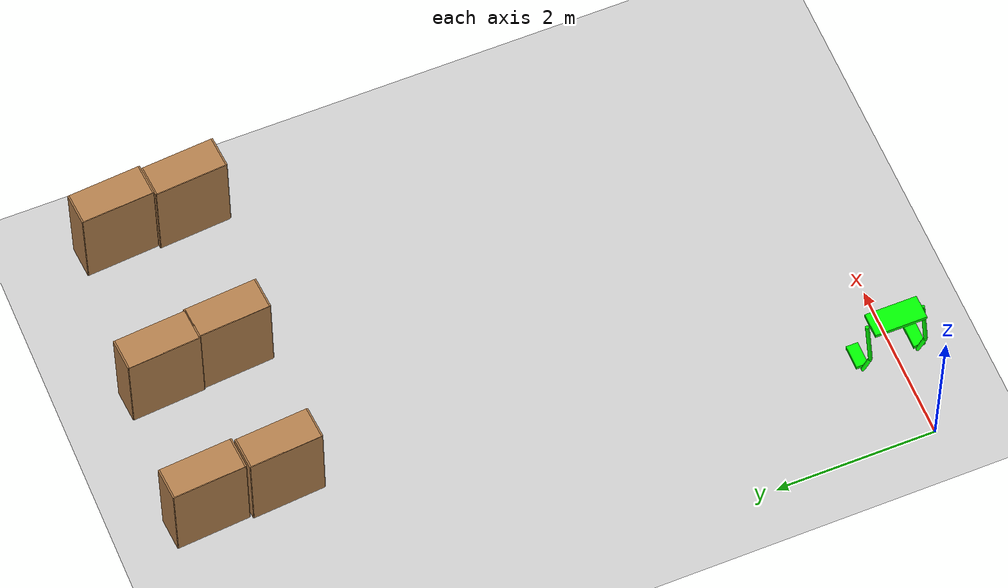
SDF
<sdf version="1.6">
 <world name="default">
  <model name="ground_plane">
   <static>1</static>
   <link name="link">
    <collision name="collision">
     <geometry><plane><normal>0 0 1</normal><size>100 100</size></plane></geometry>
     <surface>
      <contact><collide_bitmask>65535</collide_bitmask></contact>
      <friction><ode><mu>100</mu><mu2>50</mu2></ode></friction>
     </surface>
    </collision>
    <visual name="visual">
     <cast_shadows>0</cast_shadows>
     <geometry><plane><normal>0 0 1</normal><size>100 100</size></plane></geometry>
     <material>
      <script><uri>file://media/materials/scripts/gazebo.material</uri><name>Gazebo/Grey</name></script>
     </material>
    </visual>
   </link>
  </model>
  <model name="robot">
   <link name="link_0">
    <pose>0.171276 -0.377857 -0.408657 0 -0 0</pose>
    <inertial>
     <mass>1</mass>
     <inertia>
      <ixx>0.166667</ixx>
      <ixy>0</ixy>
      <ixz>0</ixz>
      <iyy>0.166667</iyy>
      <iyz>0</iyz>
      <izz>0.166667</izz>
     </inertia>
    </inertial>
    <visual name="visual">
     <geometry><box><size>0.3 0.15 0.05</size></box></geometry>
     <material>
      <lighting>1</lighting>
      <script><uri>file://media/materials/scripts/gazebo.material</uri><name>Gazebo/Grey</name></script>
      <shader type="pixel"><normal_map>__default__</normal_map></shader>
      <ambient>0.3 0.3 0.3 1</ambient>
      <diffuse>0 1 0 1</diffuse>
      <specular>0.01 0.01 0.01 1</specular>
      <emissive>0 0 0 1</emissive>
     </material>
    </visual>
    <collision name="collision">
     <geometry><box><size>0.3 0.15 0.05</size></box></geometry>
     <surface>
      <friction>
       <ode><mu>1</mu><mu2>1</mu2><fdir1>0 0 0</fdir1><slip1>0</slip1><slip2>0</slip2></ode>
       <torsional>
        <coefficient>1</coefficient>
        <patch_radius>0</patch_radius>
        <surface_radius>0</surface_radius>
        <use_patch_radius>1</use_patch_radius>
        <ode><slip>0</slip></ode>
       </torsional>
      </friction>
      <bounce><restitution_coefficient>0</restitution_coefficient><threshold>1e+06</threshold></bounce>
      <contact>
       <collide_without_contact>0</collide_without_contact>
       <collide_without_contact_bitmask>1</collide_without_contact_bitmask>
       <collide_bitmask>1</collide_bitmask>
       <ode>
        <soft_cfm>0</soft_cfm>
        <soft_erp>0.2</soft_erp>
        <kp>1e+13</kp>
        <kd>1</kd>
        <max_vel>0.01</max_vel>
        <min_depth>0</min_depth>
       </ode>
       <bullet>
        <split_impulse>1</split_impulse>
        <split_impulse_penetration_threshold>-0.01</split_impulse_penetration_threshold>
        <soft_cfm>0</soft_cfm>
        <soft_erp>0.2</soft_erp>
        <kp>1e+13</kp>
        <kd>1</kd>
       </bullet>
      </contact>
     </surface>
    </collision>
   </link>
   <link name="link_0_clone">
    <pose>0.167162 0.354643 -0.398768 0 -0 0</pose>
    <inertial>
     <mass>1</mass>
     <inertia>
      <ixx>0.166667</ixx>
      <ixy>0</ixy>
      <ixz>0</ixz>
      <iyy>0.166667</iyy>
      <iyz>0</iyz>
      <izz>0.166667</izz>
     </inertia>
    </inertial>
    <visual name="visual">
     <geometry><box><size>0.3 0.15 0.05</size></box></geometry>
     <material>
      <lighting>1</lighting>
      <script><uri>file://media/materials/scripts/gazebo.material</uri><name>Gazebo/Grey</name></script>
      <shader type="pixel"><normal_map>__default__</normal_map></shader>
      <ambient>0.3 0.3 0.3 1</ambient>
      <diffuse>0 1 0 1</diffuse>
      <specular>0.01 0.01 0.01 1</specular>
      <emissive>0 0 0 1</emissive>
     </material>
    </visual>
    <collision name="collision">
     <geometry><box><size>0.3 0.15 0.05</size></box></geometry>
     <surface>
      <friction>
       <ode><mu>1</mu><mu2>1</mu2><fdir1>0 0 0</fdir1><slip1>0</slip1><slip2>0</slip2></ode>
       <torsional>
        <coefficient>1</coefficient>
        <patch_radius>0</patch_radius>
        <surface_radius>0</surface_radius>
        <use_patch_radius>1</use_patch_radius>
        <ode><slip>0</slip></ode>
       </torsional>
      </friction>
      <bounce><restitution_coefficient>0</restitution_coefficient><threshold>1e+06</threshold></bounce>
      <contact>
       <collide_without_contact>0</collide_without_contact>
       <collide_without_contact_bitmask>1</collide_without_contact_bitmask>
       <collide_bitmask>1</collide_bitmask>
       <ode>
        <soft_cfm>0</soft_cfm>
        <soft_erp>0.2</soft_erp>
        <kp>1e+13</kp>
        <kd>1</kd>
        <max_vel>0.01</max_vel>
        <min_depth>0</min_depth>
       </ode>
       <bullet>
        <split_impulse>1</split_impulse>
        <split_impulse_penetration_threshold>-0.01</split_impulse_penetration_threshold>
        <soft_cfm>0</soft_cfm>
        <soft_erp>0.2</soft_erp>
        <kp>1e+13</kp>
        <kd>1</kd>
       </bullet>
      </contact>
     </surface>
    </collision>
   </link>
   <link name="link_0_clone_0">
    <pose>-0.024251 0.004643 0.576232 0 -0 0</pose>
    <inertial>
     <mass>1</mass>
     <inertia>
      <ixx>0.166667</ixx>
      <ixy>0</ixy>
      <ixz>0</ixz>
      <iyy>0.166667</iyy>
      <iyz>0</iyz>
      <izz>0.166667</izz>
     </inertia>
    </inertial>
    <visual name="visual">
     <geometry><box><size>0.3 0.65 0.05</size></box></geometry>
     <material>
      <lighting>1</lighting>
      <script><uri>file://media/materials/scripts/gazebo.material</uri><name>Gazebo/Grey</name></script>
      <shader type="pixel"><normal_map>__default__</normal_map></shader>
      <ambient>0.3 0.3 0.3 1</ambient>
      <diffuse>0 1 0 1</diffuse>
      <specular>0.01 0.01 0.01 1</specular>
      <emissive>0 0 0 1</emissive>
     </material>
    </visual>
    <collision name="collision">
     <geometry><box><size>0.3 0.65 0.05</size></box></geometry>
     <surface>
      <friction>
       <ode><mu>1</mu><mu2>1</mu2><fdir1>0 0 0</fdir1><slip1>0</slip1><slip2>0</slip2></ode>
       <torsional>
        <coefficient>1</coefficient>
        <patch_radius>0</patch_radius>
        <surface_radius>0</surface_radius>
        <use_patch_radius>1</use_patch_radius>
        <ode><slip>0</slip></ode>
       </torsional>
      </friction>
      <bounce><restitution_coefficient>0</restitution_coefficient><threshold>1e+06</threshold></bounce>
      <contact>
       <collide_without_contact>0</collide_without_contact>
       <collide_without_contact_bitmask>1</collide_without_contact_bitmask>
       <collide_bitmask>1</collide_bitmask>
       <ode>
        <soft_cfm>0</soft_cfm>
        <soft_erp>0.2</soft_erp>
        <kp>1e+13</kp>
        <kd>1</kd>
        <max_vel>0.01</max_vel>
        <min_depth>0</min_depth>
       </ode>
       <bullet>
        <split_impulse>1</split_impulse>
        <split_impulse_penetration_threshold>-0.01</split_impulse_penetration_threshold>
        <soft_cfm>0</soft_cfm>
        <soft_erp>0.2</soft_erp>
        <kp>1e+13</kp>
        <kd>1</kd>
       </bullet>
      </contact>
     </surface>
    </collision>
   </link>
   <link name="link_1">
    <pose>-0.080601 0.354643 0.301249 0 0.3 0</pose>
    <inertial>
     <mass>1</mass>
     <inertia><ixx>0.145833</ixx><ixy>0</ixy><ixz>0</ixz><iyy>0.145833</iyy><iyz>0</iyz><izz>0.125</izz></inertia>
    </inertial>
    <visual name="visual">
     <geometry><cylinder><radius>0.025</radius><length>0.5</length></cylinder></geometry>
     <material>
      <lighting>1</lighting>
      <script><uri>file://media/materials/scripts/gazebo.material</uri><name>Gazebo/Grey</name></script>
      <shader type="pixel"><normal_map>__default__</normal_map></shader>
      <ambient>0.3 0.3 0.3 1</ambient>
      <diffuse>0 1 0 1</diffuse>
      <specular>0.01 0.01 0.01 1</specular>
      <emissive>0 0 0 1</emissive>
     </material>
    </visual>
    <collision name="collision">
     <geometry><cylinder><radius>0.025</radius><length>0.5</length></cylinder></geometry>
     <surface>
      <friction>
       <ode><mu>1</mu><mu2>1</mu2><fdir1>0 0 0</fdir1><slip1>0</slip1><slip2>0</slip2></ode>
       <torsional>
        <coefficient>1</coefficient>
        <patch_radius>0</patch_radius>
        <surface_radius>0</surface_radius>
        <use_patch_radius>1</use_patch_radius>
        <ode><slip>0</slip></ode>
       </torsional>
      </friction>
      <bounce><restitution_coefficient>0</restitution_coefficient><threshold>1e+06</threshold></bounce>
      <contact>
       <collide_without_contact>0</collide_without_contact>
       <collide_without_contact_bitmask>1</collide_without_contact_bitmask>
       <collide_bitmask>1</collide_bitmask>
       <ode>
        <soft_cfm>0</soft_cfm>
        <soft_erp>0.2</soft_erp>
        <kp>1e+13</kp>
        <kd>1</kd>
        <max_vel>0.01</max_vel>
        <min_depth>0</min_depth>
       </ode>
       <bullet>
        <split_impulse>1</split_impulse>
        <split_impulse_penetration_threshold>-0.01</split_impulse_penetration_threshold>
        <soft_cfm>0</soft_cfm>
        <soft_erp>0.2</soft_erp>
        <kp>1e+13</kp>
        <kd>1</kd>
       </bullet>
      </contact>
     </surface>
    </collision>
   </link>
   <link name="link_1_clone">
    <pose>-0.076488 -0.345357 0.30501 0 0.3 0</pose>
    <inertial>
     <mass>1</mass>
     <inertia><ixx>0.145833</ixx><ixy>0</ixy><ixz>0</ixz><iyy>0.145833</iyy><iyz>0</iyz><izz>0.125</izz></inertia>
    </inertial>
    <visual name="visual">
     <geometry><cylinder><radius>0.025</radius><length>0.5</length></cylinder></geometry>
     <material>
      <lighting>1</lighting>
      <script><uri>file://media/materials/scripts/gazebo.material</uri><name>Gazebo/Grey</name></script>
      <shader type="pixel"><normal_map>__default__</normal_map></shader>
      <ambient>0.3 0.3 0.3 1</ambient>
      <diffuse>0 1 0 1</diffuse>
      <specular>0.01 0.01 0.01 1</specular>
      <emissive>0 0 0 1</emissive>
     </material>
    </visual>
    <collision name="collision">
     <geometry><cylinder><radius>0.025</radius><length>0.5</length></cylinder></geometry>
     <surface>
      <friction>
       <ode><mu>1</mu><mu2>1</mu2><fdir1>0 0 0</fdir1><slip1>0</slip1><slip2>0</slip2></ode>
       <torsional>
        <coefficient>1</coefficient>
        <patch_radius>0</patch_radius>
        <surface_radius>0</surface_radius>
        <use_patch_radius>1</use_patch_radius>
        <ode><slip>0</slip></ode>
       </torsional>
      </friction>
      <bounce><restitution_coefficient>0</restitution_coefficient><threshold>1e+06</threshold></bounce>
      <contact>
       <collide_without_contact>0</collide_without_contact>
       <collide_without_contact_bitmask>1</collide_without_contact_bitmask>
       <collide_bitmask>1</collide_bitmask>
       <ode>
        <soft_cfm>0</soft_cfm>
        <soft_erp>0.2</soft_erp>
        <kp>1e+13</kp>
        <kd>1</kd>
        <max_vel>0.01</max_vel>
        <min_depth>0</min_depth>
       </ode>
       <bullet>
        <split_impulse>1</split_impulse>
        <split_impulse_penetration_threshold>-0.01</split_impulse_penetration_threshold>
        <soft_cfm>0</soft_cfm>
        <soft_erp>0.2</soft_erp>
        <kp>1e+13</kp>
        <kd>1</kd>
       </bullet>
      </contact>
     </surface>
    </collision>
   </link>
   <link name="link_1_clone_0">
    <pose>-0.080601 0.354643 -0.187631 0 -0.3 0</pose>
    <inertial>
     <mass>1</mass>
     <inertia><ixx>0.145833</ixx><ixy>0</ixy><ixz>0</ixz><iyy>0.145833</iyy><iyz>0</iyz><izz>0.125</izz></inertia>
    </inertial>
    <visual name="visual">
     <geometry><cylinder><radius>0.025</radius><length>0.5</length></cylinder></geometry>
     <material>
      <lighting>1</lighting>
      <script><uri>file://media/materials/scripts/gazebo.material</uri><name>Gazebo/Grey</name></script>
      <shader type="pixel"><normal_map>__default__</normal_map></shader>
      <ambient>0.3 0.3 0.3 1</ambient>
      <diffuse>0 1 0 1</diffuse>
      <specular>0.01 0.01 0.01 1</specular>
      <emissive>0 0 0 1</emissive>
     </material>
    </visual>
    <collision name="collision">
     <geometry><cylinder><radius>0.025</radius><length>0.5</length></cylinder></geometry>
     <surface>
      <friction>
       <ode><mu>1</mu><mu2>1</mu2><fdir1>0 0 0</fdir1><slip1>0</slip1><slip2>0</slip2></ode>
       <torsional>
        <coefficient>1</coefficient>
        <patch_radius>0</patch_radius>
        <surface_radius>0</surface_radius>
        <use_patch_radius>1</use_patch_radius>
        <ode><slip>0</slip></ode>
       </torsional>
      </friction>
      <bounce><restitution_coefficient>0</restitution_coefficient><threshold>1e+06</threshold></bounce>
      <contact>
       <collide_without_contact>0</collide_without_contact>
       <collide_without_contact_bitmask>1</collide_without_contact_bitmask>
       <collide_bitmask>1</collide_bitmask>
       <ode>
        <soft_cfm>0</soft_cfm>
        <soft_erp>0.2</soft_erp>
        <kp>1e+13</kp>
        <kd>1</kd>
        <max_vel>0.01</max_vel>
        <min_depth>0</min_depth>
       </ode>
       <bullet>
        <split_impulse>1</split_impulse>
        <split_impulse_penetration_threshold>-0.01</split_impulse_penetration_threshold>
        <soft_cfm>0</soft_cfm>
        <soft_erp>0.2</soft_erp>
        <kp>1e+13</kp>
        <kd>1</kd>
       </bullet>
      </contact>
     </surface>
    </collision>
   </link>
   <link name="link_1_clone_0_clone">
    <pose>-0.076488 -0.345357 -0.187435 0 -0.3 0</pose>
    <inertial>
     <mass>1</mass>
     <inertia><ixx>0.145833</ixx><ixy>0</ixy><ixz>0</ixz><iyy>0.145833</iyy><iyz>0</iyz><izz>0.125</izz></inertia>
    </inertial>
    <visual name="visual">
     <geometry><cylinder><radius>0.025</radius><length>0.5</length></cylinder></geometry>
     <material>
      <lighting>1</lighting>
      <script><uri>file://media/materials/scripts/gazebo.material</uri><name>Gazebo/Grey</name></script>
      <shader type="pixel"><normal_map>__default__</normal_map></shader>
      <ambient>0.3 0.3 0.3 1</ambient>
      <diffuse>0 1 0 1</diffuse>
      <specular>0.01 0.01 0.01 1</specular>
      <emissive>0 0 0 1</emissive>
     </material>
    </visual>
    <collision name="collision">
     <geometry><cylinder><radius>0.025</radius><length>0.5</length></cylinder></geometry>
     <surface>
      <friction>
       <ode><mu>1</mu><mu2>1</mu2><fdir1>0 0 0</fdir1><slip1>0</slip1><slip2>0</slip2></ode>
       <torsional>
        <coefficient>1</coefficient>
        <patch_radius>0</patch_radius>
        <surface_radius>0</surface_radius>
        <use_patch_radius>1</use_patch_radius>
        <ode><slip>0</slip></ode>
       </torsional>
      </friction>
      <bounce><restitution_coefficient>0</restitution_coefficient><threshold>1e+06</threshold></bounce>
      <contact>
       <collide_without_contact>0</collide_without_contact>
       <collide_without_contact_bitmask>1</collide_without_contact_bitmask>
       <collide_bitmask>1</collide_bitmask>
       <ode>
        <soft_cfm>0</soft_cfm>
        <soft_erp>0.2</soft_erp>
        <kp>1e+13</kp>
        <kd>1</kd>
        <max_vel>0.01</max_vel>
        <min_depth>0</min_depth>
       </ode>
       <bullet>
        <split_impulse>1</split_impulse>
        <split_impulse_penetration_threshold>-0.01</split_impulse_penetration_threshold>
        <soft_cfm>0</soft_cfm>
        <soft_erp>0.2</soft_erp>
        <kp>1e+13</kp>
        <kd>1</kd>
       </bullet>
      </contact>
     </surface>
    </collision>
   </link>
   <joint name="link_0_clone_0_JOINT_0" type="revolute">
    <parent>link_0_clone_0</parent>
    <child>link_1</child>
    <axis>
     <xyz>0 1 0</xyz>
     <use_parent_model_frame>0</use_parent_model_frame>
     <limit>
      <lower>-1.79769e+308</lower>
      <upper>1.79769e+308</upper>
      <effort>-1</effort>
      <velocity>-1</velocity>
     </limit>
     <dynamics>
      <spring_reference>0</spring_reference>
      <spring_stiffness>0</spring_stiffness>
      <damping>0</damping>
      <friction>0</friction>
     </dynamics>
    </axis>
    <physics>
     <ode><limit><cfm>0</cfm><erp>0.2</erp></limit><suspension><cfm>0</cfm><erp>0.2</erp></suspension></ode>
    </physics>
   </joint>
   <joint name="link_0_clone_0_JOINT_1" type="revolute">
    <parent>link_0_clone_0</parent>
    <child>link_1_clone</child>
    <axis>
     <xyz>0 0 1</xyz>
     <use_parent_model_frame>0</use_parent_model_frame>
     <limit>
      <lower>-1.79769e+308</lower>
      <upper>1.79769e+308</upper>
      <effort>-1</effort>
      <velocity>-1</velocity>
     </limit>
     <dynamics>
      <spring_reference>0</spring_reference>
      <spring_stiffness>0</spring_stiffness>
      <damping>0</damping>
     </dynamics>
    </axis>
    <physics>
     <ode><limit><cfm>0</cfm><erp>0.2</erp></limit><suspension><cfm>0</cfm><erp>0.2</erp></suspension></ode>
    </physics>
   </joint>
   <joint name="link_1_JOINT_3" type="revolute">
    <parent>link_1</parent>
    <child>link_1_clone_0</child>
    <axis>
     <xyz>0 -1 0</xyz>
     <use_parent_model_frame>0</use_parent_model_frame>
     <limit>
      <lower>-1.79769e+308</lower>
      <upper>1.79769e+308</upper>
      <effort>-1</effort>
      <velocity>-1</velocity>
     </limit>
     <dynamics>
      <spring_reference>0</spring_reference>
      <spring_stiffness>0</spring_stiffness>
      <damping>0</damping>
     </dynamics>
    </axis>
    <physics>
     <ode><limit><cfm>0</cfm><erp>0.2</erp></limit><suspension><cfm>0</cfm><erp>0.2</erp></suspension></ode>
    </physics>
   </joint>
   <joint name="link_1_clone_0_JOINT_6" type="revolute">
    <parent>link_1_clone_0</parent>
    <child>link_0_clone</child>
    <axis>
     <xyz>0 1 0</xyz>
     <use_parent_model_frame>0</use_parent_model_frame>
     <limit>
      <lower>-1.79769e+308</lower>
      <upper>1.79769e+308</upper>
      <effort>-1</effort>
      <velocity>-1</velocity>
     </limit>
     <dynamics>
      <spring_reference>0</spring_reference>
      <spring_stiffness>0</spring_stiffness>
      <damping>0</damping>
     </dynamics>
    </axis>
    <physics>
     <ode><limit><cfm>0</cfm><erp>0.2</erp></limit><suspension><cfm>0</cfm><erp>0.2</erp></suspension></ode>
    </physics>
   </joint>
   <joint name="link_1_clone_0_clone_JOINT_5" type="revolute">
    <parent>link_1_clone_0_clone</parent>
    <child>link_0</child>
    <axis>
     <xyz>0 1 0</xyz>
     <use_parent_model_frame>0</use_parent_model_frame>
     <limit>
      <lower>-1.79769e+308</lower>
      <upper>1.79769e+308</upper>
      <effort>-1</effort>
      <velocity>-1</velocity>
     </limit>
     <dynamics>
      <spring_reference>0</spring_reference>
      <spring_stiffness>0</spring_stiffness>
      <damping>0</damping>
     </dynamics>
    </axis>
    <physics>
     <ode><limit><cfm>0</cfm><erp>0.2</erp></limit><suspension><cfm>0</cfm><erp>0.2</erp></suspension></ode>
    </physics>
   </joint>
   <joint name="link_1_clone_JOINT_4" type="revolute">
    <parent>link_1_clone</parent>
    <child>link_1_clone_0_clone</child>
    <axis>
     <xyz>0 1 0</xyz>
     <use_parent_model_frame>0</use_parent_model_frame>
     <limit>
      <lower>-1.79769e+308</lower>
      <upper>1.79769e+308</upper>
      <effort>-1</effort>
      <velocity>-1</velocity>
     </limit>
     <dynamics>
      <spring_reference>0</spring_reference>
      <spring_stiffness>0</spring_stiffness>
      <damping>0</damping>
     </dynamics>
    </axis>
    <physics>
     <ode><limit><cfm>0</cfm><erp>0.2</erp></limit><suspension><cfm>0</cfm><erp>0.2</erp></suspension></ode>
    </physics>
   </joint>
   <static>1</static>
   <allow_auto_disable>0</allow_auto_disable>
   <pose>1.08701 0.074875 0.423768 0 -0 0</pose>
  </model>
  <model name="bookshelf_0">
   <static>1</static>
   <link name="link">
    <inertial><mass>1</mass></inertial>
    <collision name="back">
     <pose>0 0.005 0.6 0 -0 0</pose>
     <geometry><box><size>0.9 0.01 1.2</size></box></geometry>
    </collision>
    <visual name="visual1">
     <pose>0 0.005 0.6 0 -0 0</pose>
     <geometry><box><size>0.9 0.01 1.2</size></box></geometry>
     <material>
      <script><uri>file://media/materials/scripts/gazebo.material</uri><name>Gazebo/Wood</name></script>
     </material>
    </visual>
    <collision name="left_side">
     <pose>0.45 -0.195 0.6 0 -0 0</pose>
     <geometry><box><size>0.02 0.4 1.2</size></box></geometry>
    </collision>
    <visual name="visual2">
     <pose>0.45 -0.195 0.6 0 -0 0</pose>
     <geometry><box><size>0.02 0.4 1.2</size></box></geometry>
     <material>
      <script><uri>file://media/materials/scripts/gazebo.material</uri><name>Gazebo/Wood</name></script>
     </material>
    </visual>
    <collision name="right_side">
     <pose>-0.45 -0.195 0.6 0 -0 0</pose>
     <geometry><box><size>0.02 0.4 1.2</size></box></geometry>
    </collision>
    <visual name="visual3">
     <pose>-0.45 -0.195 0.6 0 -0 0</pose>
     <geometry><box><size>0.02 0.4 1.2</size></box></geometry>
     <material>
      <script><uri>file://media/materials/scripts/gazebo.material</uri><name>Gazebo/Wood</name></script>
     </material>
    </visual>
    <collision name="bottom">
     <pose>0 -0.195 0.03 0 -0 0</pose>
     <geometry><box><size>0.88 0.4 0.06</size></box></geometry>
    </collision>
    <visual name="visual4">
     <pose>0 -0.195 0.03 0 -0 0</pose>
     <geometry><box><size>0.88 0.4 0.06</size></box></geometry>
     <material>
      <script><uri>file://media/materials/scripts/gazebo.material</uri><name>Gazebo/Wood</name></script>
     </material>
    </visual>
    <collision name="top">
     <pose>0 -0.195 1.19 0 -0 0</pose>
     <geometry><box><size>0.88 0.4 0.02</size></box></geometry>
    </collision>
    <visual name="visual5">
     <pose>0 -0.195 1.19 0 -0 0</pose>
     <geometry><box><size>0.88 0.4 0.02</size></box></geometry>
     <material>
      <script><uri>file://media/materials/scripts/gazebo.material</uri><name>Gazebo/Wood</name></script>
     </material>
    </visual>
    <collision name="low_shelf">
     <pose>0 -0.195 0.43 0 -0 0</pose>
     <geometry><box><size>0.88 0.4 0.02</size></box></geometry>
    </collision>
    <visual name="visual6">
     <pose>0 -0.195 0.43 0 -0 0</pose>
     <geometry><box><size>0.88 0.4 0.02</size></box></geometry>
     <material>
      <script><uri>file://media/materials/scripts/gazebo.material</uri><name>Gazebo/Wood</name></script>
     </material>
    </visual>
    <collision name="high_shelf">
     <pose>0 -0.195 0.8 0 -0 0</pose>
     <geometry><box><size>0.88 0.4 0.02</size></box></geometry>
    </collision>
    <visual name="visual7">
     <pose>0 -0.195 0.8 0 -0 0</pose>
     <geometry><box><size>0.88 0.4 0.02</size></box></geometry>
     <material>
      <script><uri>file://media/materials/scripts/gazebo.material</uri><name>Gazebo/Wood</name></script>
     </material>
    </visual>
   </link>
   <pose>3.80571 7.14474 0 0 -0 1.64426</pose>
  </model>
  <model name="bookshelf_0_clone">
   <static>1</static>
   <link name="link">
    <inertial><mass>1</mass></inertial>
    <collision name="back">
     <pose>0 0.005 0.6 0 -0 0</pose>
     <geometry><box><size>0.9 0.01 1.2</size></box></geometry>
    </collision>
    <visual name="visual1">
     <pose>0 0.005 0.6 0 -0 0</pose>
     <geometry><box><size>0.9 0.01 1.2</size></box></geometry>
     <material>
      <script><uri>file://media/materials/scripts/gazebo.material</uri><name>Gazebo/Wood</name></script>
     </material>
    </visual>
    <collision name="left_side">
     <pose>0.45 -0.195 0.6 0 -0 0</pose>
     <geometry><box><size>0.02 0.4 1.2</size></box></geometry>
    </collision>
    <visual name="visual2">
     <pose>0.45 -0.195 0.6 0 -0 0</pose>
     <geometry><box><size>0.02 0.4 1.2</size></box></geometry>
     <material>
      <script><uri>file://media/materials/scripts/gazebo.material</uri><name>Gazebo/Wood</name></script>
     </material>
    </visual>
    <collision name="right_side">
     <pose>-0.45 -0.195 0.6 0 -0 0</pose>
     <geometry><box><size>0.02 0.4 1.2</size></box></geometry>
    </collision>
    <visual name="visual3">
     <pose>-0.45 -0.195 0.6 0 -0 0</pose>
     <geometry><box><size>0.02 0.4 1.2</size></box></geometry>
     <material>
      <script><uri>file://media/materials/scripts/gazebo.material</uri><name>Gazebo/Wood</name></script>
     </material>
    </visual>
    <collision name="bottom">
     <pose>0 -0.195 0.03 0 -0 0</pose>
     <geometry><box><size>0.88 0.4 0.06</size></box></geometry>
    </collision>
    <visual name="visual4">
     <pose>0 -0.195 0.03 0 -0 0</pose>
     <geometry><box><size>0.88 0.4 0.06</size></box></geometry>
     <material>
      <script><uri>file://media/materials/scripts/gazebo.material</uri><name>Gazebo/Wood</name></script>
     </material>
    </visual>
    <collision name="top">
     <pose>0 -0.195 1.19 0 -0 0</pose>
     <geometry><box><size>0.88 0.4 0.02</size></box></geometry>
    </collision>
    <visual name="visual5">
     <pose>0 -0.195 1.19 0 -0 0</pose>
     <geometry><box><size>0.88 0.4 0.02</size></box></geometry>
     <material>
      <script><uri>file://media/materials/scripts/gazebo.material</uri><name>Gazebo/Wood</name></script>
     </material>
    </visual>
    <collision name="low_shelf">
     <pose>0 -0.195 0.43 0 -0 0</pose>
     <geometry><box><size>0.88 0.4 0.02</size></box></geometry>
    </collision>
    <visual name="visual6">
     <pose>0 -0.195 0.43 0 -0 0</pose>
     <geometry><box><size>0.88 0.4 0.02</size></box></geometry>
     <material>
      <script><uri>file://media/materials/scripts/gazebo.material</uri><name>Gazebo/Wood</name></script>
     </material>
    </visual>
    <collision name="high_shelf">
     <pose>0 -0.195 0.8 0 -0 0</pose>
     <geometry><box><size>0.88 0.4 0.02</size></box></geometry>
    </collision>
    <visual name="visual7">
     <pose>0 -0.195 0.8 0 -0 0</pose>
     <geometry><box><size>0.88 0.4 0.02</size></box></geometry>
     <material>
      <script><uri>file://media/materials/scripts/gazebo.material</uri><name>Gazebo/Wood</name></script>
     </material>
    </visual>
   </link>
   <pose>1.99549 7.22124 0 0 -0 1.64426</pose>
  </model>
  <model name="bookshelf_0_clone_0">
   <static>1</static>
   <link name="link">
    <inertial><mass>1</mass></inertial>
    <collision name="back">
     <pose>0 0.005 0.6 0 -0 0</pose>
     <geometry><box><size>0.9 0.01 1.2</size></box></geometry>
    </collision>
    <visual name="visual1">
     <pose>0 0.005 0.6 0 -0 0</pose>
     <geometry><box><size>0.9 0.01 1.2</size></box></geometry>
     <material>
      <script><uri>file://media/materials/scripts/gazebo.material</uri><name>Gazebo/Wood</name></script>
     </material>
    </visual>
    <collision name="left_side">
     <pose>0.45 -0.195 0.6 0 -0 0</pose>
     <geometry><box><size>0.02 0.4 1.2</size></box></geometry>
    </collision>
    <visual name="visual2">
     <pose>0.45 -0.195 0.6 0 -0 0</pose>
     <geometry><box><size>0.02 0.4 1.2</size></box></geometry>
     <material>
      <script><uri>file://media/materials/scripts/gazebo.material</uri><name>Gazebo/Wood</name></script>
     </material>
    </visual>
    <collision name="right_side">
     <pose>-0.45 -0.195 0.6 0 -0 0</pose>
     <geometry><box><size>0.02 0.4 1.2</size></box></geometry>
    </collision>
    <visual name="visual3">
     <pose>-0.45 -0.195 0.6 0 -0 0</pose>
     <geometry><box><size>0.02 0.4 1.2</size></box></geometry>
     <material>
      <script><uri>file://media/materials/scripts/gazebo.material</uri><name>Gazebo/Wood</name></script>
     </material>
    </visual>
    <collision name="bottom">
     <pose>0 -0.195 0.03 0 -0 0</pose>
     <geometry><box><size>0.88 0.4 0.06</size></box></geometry>
    </collision>
    <visual name="visual4">
     <pose>0 -0.195 0.03 0 -0 0</pose>
     <geometry><box><size>0.88 0.4 0.06</size></box></geometry>
     <material>
      <script><uri>file://media/materials/scripts/gazebo.material</uri><name>Gazebo/Wood</name></script>
     </material>
    </visual>
    <collision name="top">
     <pose>0 -0.195 1.19 0 -0 0</pose>
     <geometry><box><size>0.88 0.4 0.02</size></box></geometry>
    </collision>
    <visual name="visual5">
     <pose>0 -0.195 1.19 0 -0 0</pose>
     <geometry><box><size>0.88 0.4 0.02</size></box></geometry>
     <material>
      <script><uri>file://media/materials/scripts/gazebo.material</uri><name>Gazebo/Wood</name></script>
     </material>
    </visual>
    <collision name="low_shelf">
     <pose>0 -0.195 0.43 0 -0 0</pose>
     <geometry><box><size>0.88 0.4 0.02</size></box></geometry>
    </collision>
    <visual name="visual6">
     <pose>0 -0.195 0.43 0 -0 0</pose>
     <geometry><box><size>0.88 0.4 0.02</size></box></geometry>
     <material>
      <script><uri>file://media/materials/scripts/gazebo.material</uri><name>Gazebo/Wood</name></script>
     </material>
    </visual>
    <collision name="high_shelf">
     <pose>0 -0.195 0.8 0 -0 0</pose>
     <geometry><box><size>0.88 0.4 0.02</size></box></geometry>
    </collision>
    <visual name="visual7">
     <pose>0 -0.195 0.8 0 -0 0</pose>
     <geometry><box><size>0.88 0.4 0.02</size></box></geometry>
     <material>
      <script><uri>file://media/materials/scripts/gazebo.material</uri><name>Gazebo/Wood</name></script>
     </material>
    </visual>
   </link>
   <pose>1.959 8.16188 0 0 -0 1.64426</pose>
  </model>
  <model name="bookshelf_0_clone_1">
   <static>1</static>
   <link name="link">
    <inertial><mass>1</mass></inertial>
    <collision name="back">
     <pose>0 0.005 0.6 0 -0 0</pose>
     <geometry><box><size>0.9 0.01 1.2</size></box></geometry>
    </collision>
    <visual name="visual1">
     <pose>0 0.005 0.6 0 -0 0</pose>
     <geometry><box><size>0.9 0.01 1.2</size></box></geometry>
     <material>
      <script><uri>file://media/materials/scripts/gazebo.material</uri><name>Gazebo/Wood</name></script>
     </material>
    </visual>
    <collision name="left_side">
     <pose>0.45 -0.195 0.6 0 -0 0</pose>
     <geometry><box><size>0.02 0.4 1.2</size></box></geometry>
    </collision>
    <visual name="visual2">
     <pose>0.45 -0.195 0.6 0 -0 0</pose>
     <geometry><box><size>0.02 0.4 1.2</size></box></geometry>
     <material>
      <script><uri>file://media/materials/scripts/gazebo.material</uri><name>Gazebo/Wood</name></script>
     </material>
    </visual>
    <collision name="right_side">
     <pose>-0.45 -0.195 0.6 0 -0 0</pose>
     <geometry><box><size>0.02 0.4 1.2</size></box></geometry>
    </collision>
    <visual name="visual3">
     <pose>-0.45 -0.195 0.6 0 -0 0</pose>
     <geometry><box><size>0.02 0.4 1.2</size></box></geometry>
     <material>
      <script><uri>file://media/materials/scripts/gazebo.material</uri><name>Gazebo/Wood</name></script>
     </material>
    </visual>
    <collision name="bottom">
     <pose>0 -0.195 0.03 0 -0 0</pose>
     <geometry><box><size>0.88 0.4 0.06</size></box></geometry>
    </collision>
    <visual name="visual4">
     <pose>0 -0.195 0.03 0 -0 0</pose>
     <geometry><box><size>0.88 0.4 0.06</size></box></geometry>
     <material>
      <script><uri>file://media/materials/scripts/gazebo.material</uri><name>Gazebo/Wood</name></script>
     </material>
    </visual>
    <collision name="top">
     <pose>0 -0.195 1.19 0 -0 0</pose>
     <geometry><box><size>0.88 0.4 0.02</size></box></geometry>
    </collision>
    <visual name="visual5">
     <pose>0 -0.195 1.19 0 -0 0</pose>
     <geometry><box><size>0.88 0.4 0.02</size></box></geometry>
     <material>
      <script><uri>file://media/materials/scripts/gazebo.material</uri><name>Gazebo/Wood</name></script>
     </material>
    </visual>
    <collision name="low_shelf">
     <pose>0 -0.195 0.43 0 -0 0</pose>
     <geometry><box><size>0.88 0.4 0.02</size></box></geometry>
    </collision>
    <visual name="visual6">
     <pose>0 -0.195 0.43 0 -0 0</pose>
     <geometry><box><size>0.88 0.4 0.02</size></box></geometry>
     <material>
      <script><uri>file://media/materials/scripts/gazebo.material</uri><name>Gazebo/Wood</name></script>
     </material>
    </visual>
    <collision name="high_shelf">
     <pose>0 -0.195 0.8 0 -0 0</pose>
     <geometry><box><size>0.88 0.4 0.02</size></box></geometry>
    </collision>
    <visual name="visual7">
     <pose>0 -0.195 0.8 0 -0 0</pose>
     <geometry><box><size>0.88 0.4 0.02</size></box></geometry>
     <material>
      <script><uri>file://media/materials/scripts/gazebo.material</uri><name>Gazebo/Wood</name></script>
     </material>
    </visual>
   </link>
   <pose>3.72109 8.03543 0 0 -0 1.64426</pose>
  </model>
  <model name="bookshelf_0_clone_2">
   <static>1</static>
   <link name="link">
    <inertial><mass>1</mass></inertial>
    <collision name="back">
     <pose>0 0.005 0.6 0 -0 0</pose>
     <geometry><box><size>0.9 0.01 1.2</size></box></geometry>
    </collision>
    <visual name="visual1">
     <pose>0 0.005 0.6 0 -0 0</pose>
     <geometry><box><size>0.9 0.01 1.2</size></box></geometry>
     <material>
      <script><uri>file://media/materials/scripts/gazebo.material</uri><name>Gazebo/Wood</name></script>
     </material>
    </visual>
    <collision name="left_side">
     <pose>0.45 -0.195 0.6 0 -0 0</pose>
     <geometry><box><size>0.02 0.4 1.2</size></box></geometry>
    </collision>
    <visual name="visual2">
     <pose>0.45 -0.195 0.6 0 -0 0</pose>
     <geometry><box><size>0.02 0.4 1.2</size></box></geometry>
     <material>
      <script><uri>file://media/materials/scripts/gazebo.material</uri><name>Gazebo/Wood</name></script>
     </material>
    </visual>
    <collision name="right_side">
     <pose>-0.45 -0.195 0.6 0 -0 0</pose>
     <geometry><box><size>0.02 0.4 1.2</size></box></geometry>
    </collision>
    <visual name="visual3">
     <pose>-0.45 -0.195 0.6 0 -0 0</pose>
     <geometry><box><size>0.02 0.4 1.2</size></box></geometry>
     <material>
      <script><uri>file://media/materials/scripts/gazebo.material</uri><name>Gazebo/Wood</name></script>
     </material>
    </visual>
    <collision name="bottom">
     <pose>0 -0.195 0.03 0 -0 0</pose>
     <geometry><box><size>0.88 0.4 0.06</size></box></geometry>
    </collision>
    <visual name="visual4">
     <pose>0 -0.195 0.03 0 -0 0</pose>
     <geometry><box><size>0.88 0.4 0.06</size></box></geometry>
     <material>
      <script><uri>file://media/materials/scripts/gazebo.material</uri><name>Gazebo/Wood</name></script>
     </material>
    </visual>
    <collision name="top">
     <pose>0 -0.195 1.19 0 -0 0</pose>
     <geometry><box><size>0.88 0.4 0.02</size></box></geometry>
    </collision>
    <visual name="visual5">
     <pose>0 -0.195 1.19 0 -0 0</pose>
     <geometry><box><size>0.88 0.4 0.02</size></box></geometry>
     <material>
      <script><uri>file://media/materials/scripts/gazebo.material</uri><name>Gazebo/Wood</name></script>
     </material>
    </visual>
    <collision name="low_shelf">
     <pose>0 -0.195 0.43 0 -0 0</pose>
     <geometry><box><size>0.88 0.4 0.02</size></box></geometry>
    </collision>
    <visual name="visual6">
     <pose>0 -0.195 0.43 0 -0 0</pose>
     <geometry><box><size>0.88 0.4 0.02</size></box></geometry>
     <material>
      <script><uri>file://media/materials/scripts/gazebo.material</uri><name>Gazebo/Wood</name></script>
     </material>
    </visual>
    <collision name="high_shelf">
     <pose>0 -0.195 0.8 0 -0 0</pose>
     <geometry><box><size>0.88 0.4 0.02</size></box></geometry>
    </collision>
    <visual name="visual7">
     <pose>0 -0.195 0.8 0 -0 0</pose>
     <geometry><box><size>0.88 0.4 0.02</size></box></geometry>
     <material>
      <script><uri>file://media/materials/scripts/gazebo.material</uri><name>Gazebo/Wood</name></script>
     </material>
    </visual>
   </link>
   <pose>5.76262 6.91876 0 0 -0 1.64426</pose>
  </model>
  <model name="bookshelf_0_clone_3">
   <static>1</static>
   <link name="link">
    <inertial><mass>1</mass></inertial>
    <collision name="back">
     <pose>0 0.005 0.6 0 -0 0</pose>
     <geometry><box><size>0.9 0.01 1.2</size></box></geometry>
    </collision>
    <visual name="visual1">
     <pose>0 0.005 0.6 0 -0 0</pose>
     <geometry><box><size>0.9 0.01 1.2</size></box></geometry>
     <material>
      <script><uri>file://media/materials/scripts/gazebo.material</uri><name>Gazebo/Wood</name></script>
     </material>
    </visual>
    <collision name="left_side">
     <pose>0.45 -0.195 0.6 0 -0 0</pose>
     <geometry><box><size>0.02 0.4 1.2</size></box></geometry>
    </collision>
    <visual name="visual2">
     <pose>0.45 -0.195 0.6 0 -0 0</pose>
     <geometry><box><size>0.02 0.4 1.2</size></box></geometry>
     <material>
      <script><uri>file://media/materials/scripts/gazebo.material</uri><name>Gazebo/Wood</name></script>
     </material>
    </visual>
    <collision name="right_side">
     <pose>-0.45 -0.195 0.6 0 -0 0</pose>
     <geometry><box><size>0.02 0.4 1.2</size></box></geometry>
    </collision>
    <visual name="visual3">
     <pose>-0.45 -0.195 0.6 0 -0 0</pose>
     <geometry><box><size>0.02 0.4 1.2</size></box></geometry>
     <material>
      <script><uri>file://media/materials/scripts/gazebo.material</uri><name>Gazebo/Wood</name></script>
     </material>
    </visual>
    <collision name="bottom">
     <pose>0 -0.195 0.03 0 -0 0</pose>
     <geometry><box><size>0.88 0.4 0.06</size></box></geometry>
    </collision>
    <visual name="visual4">
     <pose>0 -0.195 0.03 0 -0 0</pose>
     <geometry><box><size>0.88 0.4 0.06</size></box></geometry>
     <material>
      <script><uri>file://media/materials/scripts/gazebo.material</uri><name>Gazebo/Wood</name></script>
     </material>
    </visual>
    <collision name="top">
     <pose>0 -0.195 1.19 0 -0 0</pose>
     <geometry><box><size>0.88 0.4 0.02</size></box></geometry>
    </collision>
    <visual name="visual5">
     <pose>0 -0.195 1.19 0 -0 0</pose>
     <geometry><box><size>0.88 0.4 0.02</size></box></geometry>
     <material>
      <script><uri>file://media/materials/scripts/gazebo.material</uri><name>Gazebo/Wood</name></script>
     </material>
    </visual>
    <collision name="low_shelf">
     <pose>0 -0.195 0.43 0 -0 0</pose>
     <geometry><box><size>0.88 0.4 0.02</size></box></geometry>
    </collision>
    <visual name="visual6">
     <pose>0 -0.195 0.43 0 -0 0</pose>
     <geometry><box><size>0.88 0.4 0.02</size></box></geometry>
     <material>
      <script><uri>file://media/materials/scripts/gazebo.material</uri><name>Gazebo/Wood</name></script>
     </material>
    </visual>
    <collision name="high_shelf">
     <pose>0 -0.195 0.8 0 -0 0</pose>
     <geometry><box><size>0.88 0.4 0.02</size></box></geometry>
    </collision>
    <visual name="visual7">
     <pose>0 -0.195 0.8 0 -0 0</pose>
     <geometry><box><size>0.88 0.4 0.02</size></box></geometry>
     <material>
      <script><uri>file://media/materials/scripts/gazebo.material</uri><name>Gazebo/Wood</name></script>
     </material>
    </visual>
   </link>
   <pose>5.7359 7.8366 0 0 -0 1.64426</pose>
  </model>
 </world>
</sdf>
